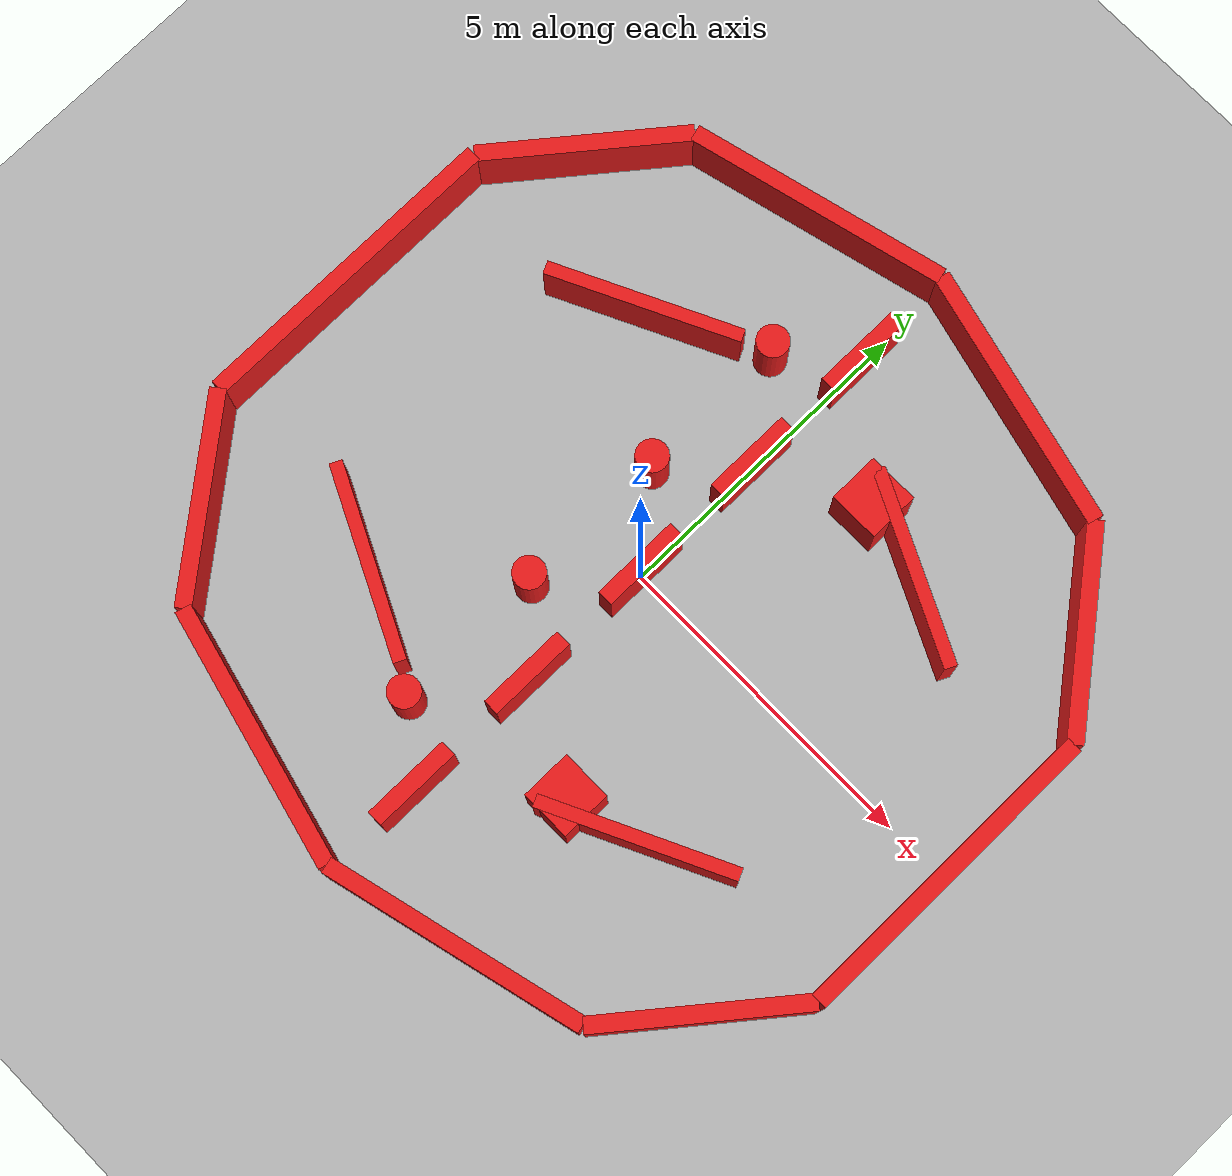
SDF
<sdf version="1.7">
 <world name="default">
  <light name="sun" type="directional">
   <pose>0 0 10 0 -0 0</pose>
   <diffuse>0.8 0.8 0.8 1</diffuse>
   <specular>0.2 0.2 0.2 1</specular>
   <attenuation>
    <range>1000</range>
    <constant>0.9</constant>
    <linear>0.01</linear>
    <quadratic>0.001</quadratic>
   </attenuation>
   <direction>-0.5 0.1 -0.9</direction>
   <spot><inner_angle>0</inner_angle><outer_angle>0</outer_angle><falloff>0</falloff></spot>
  </light>
  <model name="ground_plane">
   <static>1</static>
   <link name="link">
    <collision name="collision">
     <geometry><plane><normal>0 0 1</normal><size>100 100</size></plane></geometry>
     <surface>
      <contact><collide_bitmask>65535</collide_bitmask></contact>
      <friction><ode><mu>100</mu><mu2>50</mu2></ode></friction>
     </surface>
    </collision>
    <visual name="visual">
     <cast_shadows>0</cast_shadows>
     <geometry><plane><normal>0 0 1</normal><size>100 100</size></plane></geometry>
     <material>
      <ambient>0.7 0.7 0.7 1</ambient>
      <diffuse>0.7 0.7 0.7 1</diffuse>
      <specular>0.2 0.2 0.2 1</specular>
      <emissive>0 0 0 1</emissive>
      <pbr><metal><albedo>0.7 0.7 0.7 1</albedo><roughness>0.4</roughness><metalness>0</metalness></metal></pbr>
     </material>
    </visual>
   </link>
  </model>
  <gravity>0 0 -9.8</gravity>
  <magnetic_field>6e-06 2.3e-05 -4.2e-05</magnetic_field>
  <atmosphere type="adiabatic"/>
  <physics type="ode">
   <max_step_size>0.001</max_step_size>
   <real_time_factor>1</real_time_factor>
   <real_time_update_rate>1000</real_time_update_rate>
  </physics>
  <plugin filename="ignition-gazebo-physics-system" name="gz::sim::systems::Physics"/>
  <plugin filename="ignition-gazebo-sensors-system" name="gz::sim::systems::Sensors">
   <render_engine>ogre2</render_engine>
  </plugin>
  <plugin filename="ignition-gazebo-imu-system" name="gz::sim::systems::Imu"/>
  <plugin filename="ignition-gazebo-user-commands-system" name="gz::sim::systems::UserCommands"/>
  <plugin filename="ignition-gazebo-scene-broadcaster-system" name="gz::sim::systems::SceneBroadcaster"/>
  <scene><ambient>0.4 0.4 0.4 1</ambient><background>0.7 0.7 0.7 1</background><shadows>1</shadows></scene>
  <spherical_coordinates>
   <surface_model>EARTH_WGS84</surface_model>
   <latitude_deg>0</latitude_deg>
   <longitude_deg>0</longitude_deg>
   <elevation>0</elevation>
   <heading_deg>0</heading_deg>
  </spherical_coordinates>
  <model name="arena_layout">
   <static>1</static>
   <link name="outer_01">
    <pose>2 5.5 0.5 0 -0 -0.244978663</pose>
    <collision name="collision"><geometry><box><size>4.123105626 0.25 1</size></box></geometry></collision>
    <visual name="visual">
     <geometry><box><size>4.123105626 0.25 1</size></box></geometry>
     <material>
      <ambient>0.9 0.1 0.1 1</ambient>
      <diffuse>0.9 0.1 0.1 1</diffuse>
      <specular>0.1 0.1 0.1 1</specular>
     </material>
    </visual>
   </link>
   <link name="outer_02">
    <pose>5 3.75 0.5 0 -0 -0.896055385</pose>
    <collision name="collision"><geometry><box><size>3.20156212 0.25 1</size></box></geometry></collision>
    <visual name="visual">
     <geometry><box><size>3.20156212 0.25 1</size></box></geometry>
     <material>
      <ambient>0.9 0.1 0.1 1</ambient>
      <diffuse>0.9 0.1 0.1 1</diffuse>
      <specular>0.1 0.1 0.1 1</specular>
     </material>
    </visual>
   </link>
   <link name="outer_03">
    <pose>6 0 0.5 0 -0 -1.570796327</pose>
    <collision name="collision"><geometry><box><size>5 0.25 1</size></box></geometry></collision>
    <visual name="visual">
     <geometry><box><size>5 0.25 1</size></box></geometry>
     <material>
      <ambient>0.9 0.1 0.1 1</ambient>
      <diffuse>0.9 0.1 0.1 1</diffuse>
      <specular>0.1 0.1 0.1 1</specular>
     </material>
    </visual>
   </link>
   <link name="outer_04">
    <pose>5 -3.75 0.5 0 -0 -2.245537269</pose>
    <collision name="collision"><geometry><box><size>3.20156212 0.25 1</size></box></geometry></collision>
    <visual name="visual">
     <geometry><box><size>3.20156212 0.25 1</size></box></geometry>
     <material>
      <ambient>0.9 0.1 0.1 1</ambient>
      <diffuse>0.9 0.1 0.1 1</diffuse>
      <specular>0.1 0.1 0.1 1</specular>
     </material>
    </visual>
   </link>
   <link name="outer_05">
    <pose>2 -5.5 0.5 0 -0 -2.89661399</pose>
    <collision name="collision"><geometry><box><size>4.123105626 0.25 1</size></box></geometry></collision>
    <visual name="visual">
     <geometry><box><size>4.123105626 0.25 1</size></box></geometry>
     <material>
      <ambient>0.9 0.1 0.1 1</ambient>
      <diffuse>0.9 0.1 0.1 1</diffuse>
      <specular>0.1 0.1 0.1 1</specular>
     </material>
    </visual>
   </link>
   <link name="outer_06">
    <pose>-2 -5.5 0.5 0 -0 2.89661399</pose>
    <collision name="collision"><geometry><box><size>4.123105626 0.25 1</size></box></geometry></collision>
    <visual name="visual">
     <geometry><box><size>4.123105626 0.25 1</size></box></geometry>
     <material>
      <ambient>0.9 0.1 0.1 1</ambient>
      <diffuse>0.9 0.1 0.1 1</diffuse>
      <specular>0.1 0.1 0.1 1</specular>
     </material>
    </visual>
   </link>
   <link name="outer_07">
    <pose>-5 -3.75 0.5 0 -0 2.245537269</pose>
    <collision name="collision"><geometry><box><size>3.20156212 0.25 1</size></box></geometry></collision>
    <visual name="visual">
     <geometry><box><size>3.20156212 0.25 1</size></box></geometry>
     <material>
      <ambient>0.9 0.1 0.1 1</ambient>
      <diffuse>0.9 0.1 0.1 1</diffuse>
      <specular>0.1 0.1 0.1 1</specular>
     </material>
    </visual>
   </link>
   <link name="outer_08">
    <pose>-6 0 0.5 0 -0 1.570796327</pose>
    <collision name="collision"><geometry><box><size>5 0.25 1</size></box></geometry></collision>
    <visual name="visual">
     <geometry><box><size>5 0.25 1</size></box></geometry>
     <material>
      <ambient>0.9 0.1 0.1 1</ambient>
      <diffuse>0.9 0.1 0.1 1</diffuse>
      <specular>0.1 0.1 0.1 1</specular>
     </material>
    </visual>
   </link>
   <link name="outer_09">
    <pose>-5 3.75 0.5 0 -0 0.896055385</pose>
    <collision name="collision"><geometry><box><size>3.20156212 0.25 1</size></box></geometry></collision>
    <visual name="visual">
     <geometry><box><size>3.20156212 0.25 1</size></box></geometry>
     <material>
      <ambient>0.9 0.1 0.1 1</ambient>
      <diffuse>0.9 0.1 0.1 1</diffuse>
      <specular>0.1 0.1 0.1 1</specular>
     </material>
    </visual>
   </link>
   <link name="outer_10">
    <pose>-2 5.5 0.5 0 -0 0.244978663</pose>
    <collision name="collision"><geometry><box><size>4.123105626 0.25 1</size></box></geometry></collision>
    <visual name="visual">
     <geometry><box><size>4.123105626 0.25 1</size></box></geometry>
     <material>
      <ambient>0.9 0.1 0.1 1</ambient>
      <diffuse>0.9 0.1 0.1 1</diffuse>
      <specular>0.1 0.1 0.1 1</specular>
     </material>
    </visual>
   </link>
   <link name="central_01">
    <pose>0 4.4 0.5 0 -0 1.570796327</pose>
    <collision name="collision"><geometry><box><size>1.4 0.25 1</size></box></geometry></collision>
    <visual name="visual">
     <geometry><box><size>1.4 0.25 1</size></box></geometry>
     <material>
      <ambient>0.9 0.1 0.1 1</ambient>
      <diffuse>0.9 0.1 0.1 1</diffuse>
      <specular>0.1 0.1 0.1 1</specular>
     </material>
    </visual>
   </link>
   <link name="central_02">
    <pose>0 2.2 0.5 0 -0 1.570796327</pose>
    <collision name="collision"><geometry><box><size>1.4 0.25 1</size></box></geometry></collision>
    <visual name="visual">
     <geometry><box><size>1.4 0.25 1</size></box></geometry>
     <material>
      <ambient>0.9 0.1 0.1 1</ambient>
      <diffuse>0.9 0.1 0.1 1</diffuse>
      <specular>0.1 0.1 0.1 1</specular>
     </material>
    </visual>
   </link>
   <link name="central_03">
    <pose>0 0 0.5 0 -0 1.570796327</pose>
    <collision name="collision"><geometry><box><size>1.4 0.25 1</size></box></geometry></collision>
    <visual name="visual">
     <geometry><box><size>1.4 0.25 1</size></box></geometry>
     <material>
      <ambient>0.9 0.1 0.1 1</ambient>
      <diffuse>0.9 0.1 0.1 1</diffuse>
      <specular>0.1 0.1 0.1 1</specular>
     </material>
    </visual>
   </link>
   <link name="central_04">
    <pose>0 -2.2 0.5 0 -0 1.570796327</pose>
    <collision name="collision"><geometry><box><size>1.4 0.25 1</size></box></geometry></collision>
    <visual name="visual">
     <geometry><box><size>1.4 0.25 1</size></box></geometry>
     <material>
      <ambient>0.9 0.1 0.1 1</ambient>
      <diffuse>0.9 0.1 0.1 1</diffuse>
      <specular>0.1 0.1 0.1 1</specular>
     </material>
    </visual>
   </link>
   <link name="central_05">
    <pose>0 -4.4 0.5 0 -0 1.570796327</pose>
    <collision name="collision"><geometry><box><size>1.4 0.25 1</size></box></geometry></collision>
    <visual name="visual">
     <geometry><box><size>1.4 0.25 1</size></box></geometry>
     <material>
      <ambient>0.9 0.1 0.1 1</ambient>
      <diffuse>0.9 0.1 0.1 1</diffuse>
      <specular>0.1 0.1 0.1 1</specular>
     </material>
    </visual>
   </link>
   <link name="left_inset_upper">
    <pose>-2.7 2.7 0.5 0 -0 0.45</pose>
    <collision name="collision"><geometry><box><size>3 0.2 1</size></box></geometry></collision>
    <visual name="visual">
     <geometry><box><size>3 0.2 1</size></box></geometry>
     <material>
      <ambient>0.9 0.1 0.1 1</ambient>
      <diffuse>0.9 0.1 0.1 1</diffuse>
      <specular>0.1 0.1 0.1 1</specular>
     </material>
    </visual>
   </link>
   <link name="left_inset_lower">
    <pose>-2.7 -2.7 0.5 0 -0 -0.45</pose>
    <collision name="collision"><geometry><box><size>3 0.2 1</size></box></geometry></collision>
    <visual name="visual">
     <geometry><box><size>3 0.2 1</size></box></geometry>
     <material>
      <ambient>0.9 0.1 0.1 1</ambient>
      <diffuse>0.9 0.1 0.1 1</diffuse>
      <specular>0.1 0.1 0.1 1</specular>
     </material>
    </visual>
   </link>
   <link name="right_inset_upper">
    <pose>2.7 2.7 0.5 0 -0 -0.45</pose>
    <collision name="collision"><geometry><box><size>3 0.2 1</size></box></geometry></collision>
    <visual name="visual">
     <geometry><box><size>3 0.2 1</size></box></geometry>
     <material>
      <ambient>0.9 0.1 0.1 1</ambient>
      <diffuse>0.9 0.1 0.1 1</diffuse>
      <specular>0.1 0.1 0.1 1</specular>
     </material>
    </visual>
   </link>
   <link name="right_inset_lower">
    <pose>2.7 -2.7 0.5 0 -0 0.45</pose>
    <collision name="collision"><geometry><box><size>3 0.2 1</size></box></geometry></collision>
    <visual name="visual">
     <geometry><box><size>3 0.2 1</size></box></geometry>
     <material>
      <ambient>0.9 0.1 0.1 1</ambient>
      <diffuse>0.9 0.1 0.1 1</diffuse>
      <specular>0.1 0.1 0.1 1</specular>
     </material>
    </visual>
   </link>
   <link name="pillar_01">
    <pose>-1 3.6 0.5 0 -0 0</pose>
    <collision name="collision">
     <geometry><cylinder><radius>0.25</radius><length>1</length></cylinder></geometry>
    </collision>
    <visual name="visual">
     <geometry><cylinder><radius>0.25</radius><length>1</length></cylinder></geometry>
     <material>
      <ambient>0.9 0.1 0.1 1</ambient>
      <diffuse>0.9 0.1 0.1 1</diffuse>
      <specular>0.1 0.1 0.1 1</specular>
     </material>
    </visual>
   </link>
   <link name="pillar_02">
    <pose>-1 1.2 0.5 0 -0 0</pose>
    <collision name="collision">
     <geometry><cylinder><radius>0.25</radius><length>1</length></cylinder></geometry>
    </collision>
    <visual name="visual">
     <geometry><cylinder><radius>0.25</radius><length>1</length></cylinder></geometry>
     <material>
      <ambient>0.9 0.1 0.1 1</ambient>
      <diffuse>0.9 0.1 0.1 1</diffuse>
      <specular>0.1 0.1 0.1 1</specular>
     </material>
    </visual>
   </link>
   <link name="pillar_03">
    <pose>-1 -1.2 0.5 0 -0 0</pose>
    <collision name="collision">
     <geometry><cylinder><radius>0.25</radius><length>1</length></cylinder></geometry>
    </collision>
    <visual name="visual">
     <geometry><cylinder><radius>0.25</radius><length>1</length></cylinder></geometry>
     <material>
      <ambient>0.9 0.1 0.1 1</ambient>
      <diffuse>0.9 0.1 0.1 1</diffuse>
      <specular>0.1 0.1 0.1 1</specular>
     </material>
    </visual>
   </link>
   <link name="pillar_04">
    <pose>-1 -3.6 0.5 0 -0 0</pose>
    <collision name="collision">
     <geometry><cylinder><radius>0.25</radius><length>1</length></cylinder></geometry>
    </collision>
    <visual name="visual">
     <geometry><cylinder><radius>0.25</radius><length>1</length></cylinder></geometry>
     <material>
      <ambient>0.9 0.1 0.1 1</ambient>
      <diffuse>0.9 0.1 0.1 1</diffuse>
      <specular>0.1 0.1 0.1 1</specular>
     </material>
    </visual>
   </link>
   <link name="block_01">
    <pose>1.6 3 0.5 0 -0 0</pose>
    <collision name="collision"><geometry><box><size>0.8 0.8 1</size></box></geometry></collision>
    <visual name="visual">
     <geometry><box><size>0.8 0.8 1</size></box></geometry>
     <material>
      <ambient>0.9 0.1 0.1 1</ambient>
      <diffuse>0.9 0.1 0.1 1</diffuse>
      <specular>0.1 0.1 0.1 1</specular>
     </material>
    </visual>
   </link>
   <link name="block_02">
    <pose>1.6 -3 0.5 0 -0 0</pose>
    <collision name="collision"><geometry><box><size>0.8 0.8 1</size></box></geometry></collision>
    <visual name="visual">
     <geometry><box><size>0.8 0.8 1</size></box></geometry>
     <material>
      <ambient>0.9 0.1 0.1 1</ambient>
      <diffuse>0.9 0.1 0.1 1</diffuse>
      <specular>0.1 0.1 0.1 1</specular>
     </material>
    </visual>
   </link>
  </model>
 </world>
</sdf>
